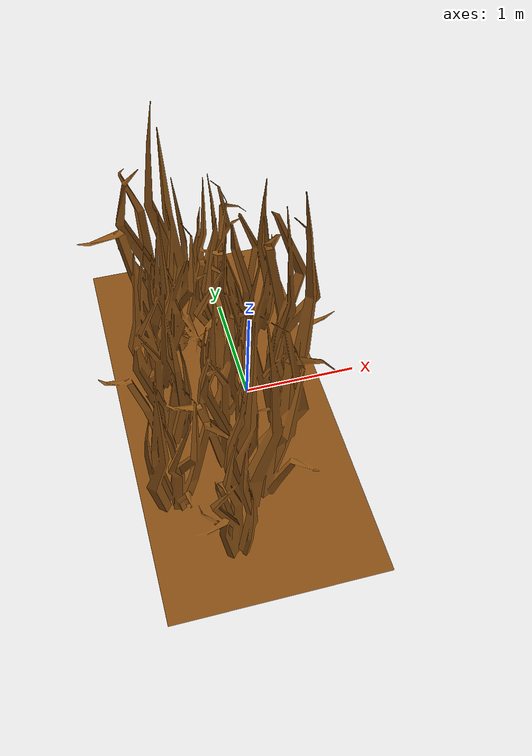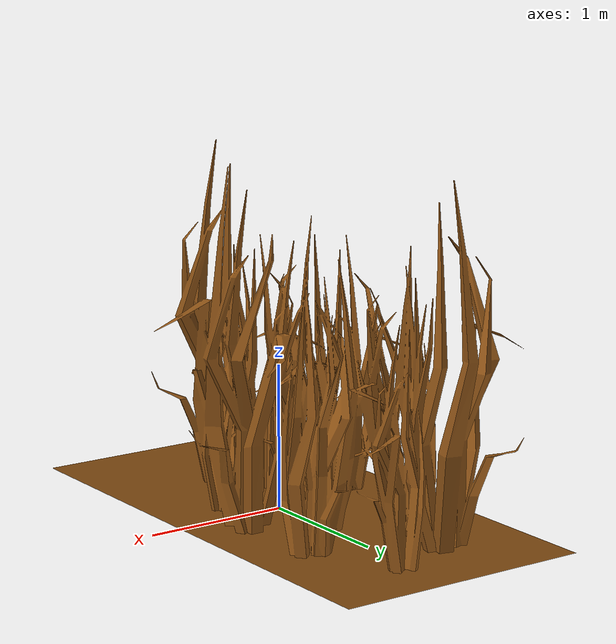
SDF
<?xml version="1.0"?>
<sdf version="1.6">
  <model name="dry_grass">
    <static>true</static>

    <link name="grass">
      <visual name="grass_visual">
        <!-- Put the down slightly so its base sits below the image. -->
        <pose>0 0 -0.03 0 0 0</pose>

        <geometry>
          <mesh>
            <uri>model://Dry_Grass/meshes/drygrass.dae</uri>
            <scale>1 1 1</scale>
          </mesh>
        </geometry>

        <material>
          <ambient>0.35 0.20 0.05 1</ambient>
          <diffuse>0.55 0.32 0.08 1</diffuse>
          <specular>0.05 0.05 0.05 1</specular>
        </material>

      </visual>
    </link>
  </model>
</sdf>
